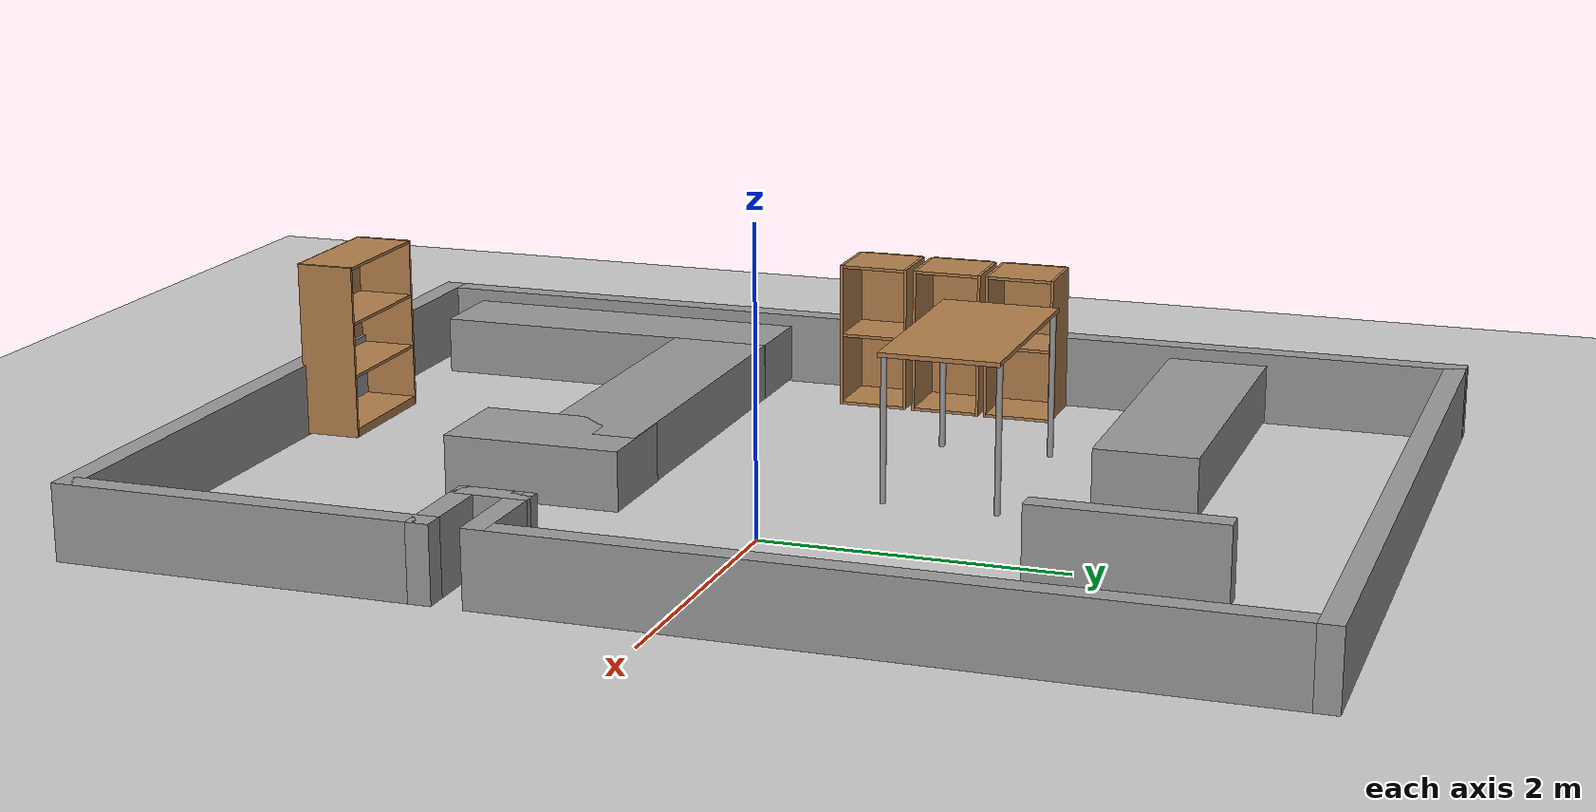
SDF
<sdf version="1.7">
 <world name="downstairs_combined">
  <include><uri>model://ground_plane</uri></include>
  <include>
   <uri>file:///home/trace/robot/src/robot_model_pkg/worlds/downstairs_building</uri>
   <pose>-1 0 0 0 0 0</pose>
  </include>
  <include>
   <uri>file:///home/trace/robot/src/robot_model_pkg/worlds/downstairs_furniture</uri>
   <pose>-2 -.5 .1 0 0 0</pose>
  </include>
  <gravity>0 0 -9.8</gravity>
  <scene><ambient>0.8 0.8 0.8 1</ambient><background>1 1 1 1</background><shadows>0</shadows></scene>
  <light name="sun" type="directional">
   <cast_shadows>0</cast_shadows>
   <pose>0 0 10 0 -0 0</pose>
   <diffuse>1 1 1 1</diffuse>
   <specular>0.5 0.5 0.5 1</specular>
   <attenuation>
    <range>1000</range>
    <constant>0.9</constant>
    <linear>0.01</linear>
    <quadratic>0.001</quadratic>
   </attenuation>
   <direction>-0.5 0.1 -0.9</direction>
  </light>
 </world>
</sdf>

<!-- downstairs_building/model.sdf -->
<sdf version='1.7'>
  <model name='downstairs_building'>
    <pose>-0.638414 -0.270406 0 0 -0 0</pose>
    <link name='Wall_10'>
      <collision name='Wall_10_Collision'>
        <geometry>
          <box>
            <size>0.5 0.15 0.5</size>
          </box>
        </geometry>
        <pose>0 0 0.25 0 -0 0</pose>
      </collision>
      <visual name='Wall_10_Visual'>
        <pose>0 0 0.25 0 -0 0</pose>
        <geometry>
          <box>
            <size>0.5 0.15 0.5</size>
          </box>
        </geometry>
        <material>
          <script>
            <uri>file://media/materials/scripts/gazebo.material</uri>
            <name>Gazebo/Grey</name>
          </script>
          <ambient>1 1 1 1</ambient>
        </material>
        <meta>
          <layer>0</layer>
        </meta>
      </visual>
      <pose>2.075 -1.275 0 0 -0 1.5708</pose>
    </link>
    <link name='Wall_11'>
      <collision name='Wall_11_Collision'>
        <geometry>
          <box>
            <size>0.75 0.15 0.5</size>
          </box>
        </geometry>
        <pose>0 0 0.25 0 -0 0</pose>
      </collision>
      <visual name='Wall_11_Visual'>
        <pose>0 0 0.25 0 -0 0</pose>
        <geometry>
          <box>
            <size>0.75 0.15 0.5</size>
          </box>
        </geometry>
        <material>
          <script>
            <uri>file://media/materials/scripts/gazebo.material</uri>
            <name>Gazebo/Grey</name>
          </script>
          <ambient>1 1 1 1</ambient>
        </material>
        <meta>
          <layer>0</layer>
        </meta>
      </visual>
      <pose>2.375 -1.1 0 0 -0 0</pose>
    </link>
    <link name='Wall_12'>
      <collision name='Wall_12_Collision'>
        <geometry>
          <box>
            <size>5 0.15 0.5</size>
          </box>
        </geometry>
        <pose>0 0 0.25 0 -0 0</pose>
      </collision>
      <visual name='Wall_12_Visual'>
        <pose>0 0 0.25 0 -0 0</pose>
        <geometry>
          <box>
            <size>5 0.15 0.5</size>
          </box>
        </geometry>
        <material>
          <script>
            <uri>file://media/materials/scripts/gazebo.material</uri>
            <name>Gazebo/Grey</name>
          </script>
          <ambient>1 1 1 1</ambient>
        </material>
        <meta>
          <layer>0</layer>
        </meta>
      </visual>
      <pose>2.675 1.325 0 0 -0 1.5708</pose>
    </link>
    <link name='Wall_16'>
      <collision name='Wall_16_Collision'>
        <geometry>
          <box>
            <size>5.5 0.15 0.5</size>
          </box>
        </geometry>
        <pose>0 0 0.25 0 -0 0</pose>
      </collision>
      <visual name='Wall_16_Visual'>
        <pose>0 0 0.25 0 -0 0</pose>
        <geometry>
          <box>
            <size>5.5 0.15 0.5</size>
          </box>
        </geometry>
        <material>
          <script>
            <uri>file://media/materials/scripts/gazebo.material</uri>
            <name>Gazebo/Grey</name>
          </script>
          <ambient>1 1 1 1</ambient>
        </material>
        <meta>
          <layer>0</layer>
        </meta>
      </visual>
      <pose>0 -3.8 0 0 -0 3.14159</pose>
    </link>
    <link name='Wall_17'>
      <collision name='Wall_17_Collision'>
        <geometry>
          <box>
            <size>7.75 0.15 0.5</size>
          </box>
        </geometry>
        <pose>0 0 0.25 0 -0 0</pose>
      </collision>
      <visual name='Wall_17_Visual'>
        <pose>0 0 0.25 0 -0 0</pose>
        <geometry>
          <box>
            <size>7.75 0.15 0.5</size>
          </box>
        </geometry>
        <material>
          <script>
            <uri>file://media/materials/scripts/gazebo.material</uri>
            <name>Gazebo/Grey</name>
          </script>
          <ambient>1 1 1 1</ambient>
        </material>
        <meta>
          <layer>0</layer>
        </meta>
      </visual>
      <pose>-2.675 -0 0 0 -0 1.5708</pose>
    </link>
    <link name='Wall_18'>
      <collision name='Wall_18_Collision'>
        <geometry>
          <box>
            <size>5.50023 0.15 0.5</size>
          </box>
        </geometry>
        <pose>0 0 0.25 0 -0 0</pose>
      </collision>
      <visual name='Wall_18_Visual'>
        <pose>0 0 0.25 0 -0 0</pose>
        <geometry>
          <box>
            <size>5.50023 0.15 0.5</size>
          </box>
        </geometry>
        <material>
          <script>
            <uri>file://media/materials/scripts/gazebo.material</uri>
            <name>Gazebo/Grey</name>
          </script>
          <ambient>1 1 1 1</ambient>
        </material>
        <meta>
          <layer>0</layer>
        </meta>
      </visual>
      <pose>0 3.8 0 0 -0 0</pose>
    </link>
    <link name='Wall_20'>
      <collision name='Wall_20_Collision'>
        <geometry>
          <box>
            <size>1.25 0.15 0.5</size>
          </box>
        </geometry>
        <pose>0 0 0.25 0 -0 0</pose>
      </collision>
      <visual name='Wall_20_Visual'>
        <pose>0 0 0.25 0 -0 0</pose>
        <geometry>
          <box>
            <size>1.25 0.15 0.5</size>
          </box>
        </geometry>
        <material>
          <script>
            <uri>file://media/materials/scripts/gazebo.material</uri>
            <name>Gazebo/Grey</name>
          </script>
          <ambient>1 1 1 1</ambient>
        </material>
        <meta>
          <layer>0</layer>
        </meta>
      </visual>
      <pose>1.20049 2.38048 0 0 -0 -1.5708</pose>
    </link>
    <link name='Wall_4'>
      <collision name='Wall_4_Collision'>
        <geometry>
          <box>
            <size>2.5 0.15 0.5</size>
          </box>
        </geometry>
        <pose>0 0 0.25 0 -0 0</pose>
      </collision>
      <visual name='Wall_4_Visual'>
        <pose>0 0 0.25 0 -0 0</pose>
        <geometry>
          <box>
            <size>2.5 0.15 0.5</size>
          </box>
        </geometry>
        <material>
          <script>
            <uri>file://media/materials/scripts/gazebo.material</uri>
            <name>Gazebo/Grey</name>
          </script>
          <ambient>1 1 1 1</ambient>
        </material>
        <meta>
          <layer>0</layer>
        </meta>
      </visual>
      <pose>2.675 -2.625 0 0 -0 1.5708</pose>
    </link>
    <link name='Wall_9'>
      <collision name='Wall_9_Collision'>
        <geometry>
          <box>
            <size>0.75 0.15 0.5</size>
          </box>
        </geometry>
        <pose>0 0 0.25 0 -0 0</pose>
      </collision>
      <visual name='Wall_9_Visual'>
        <pose>0 0 0.25 0 -0 0</pose>
        <geometry>
          <box>
            <size>0.75 0.15 0.5</size>
          </box>
        </geometry>
        <material>
          <script>
            <uri>file://media/materials/scripts/gazebo.material</uri>
            <name>Gazebo/Grey</name>
          </script>
          <ambient>1 1 1 1</ambient>
        </material>
        <meta>
          <layer>0</layer>
        </meta>
      </visual>
      <pose>2.375 -1.45 0 0 -0 3.14159</pose>
    </link>
    <static>1</static>
  </model>
</sdf>

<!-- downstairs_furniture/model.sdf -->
<sdf version='1.7'>
  <model name='downstairs_furniture'>
    <static>1</static>
    <link name='link_0'>
      <inertial>
        <mass>0.0130697</mass>
        <inertia>
          <ixx>0.000204633</ixx>
          <ixy>0</ixy>
          <ixz>0</ixz>
          <iyy>0.000147146</iyy>
          <iyz>0</iyz>
          <izz>0.000335628</izz>
        </inertia>
        <pose>0 0 0 0 -0 0</pose>
      </inertial>
      <pose>3.2564 0.476482 -0.035 0 -0 0</pose>
      <gravity>1</gravity>
      <self_collide>0</self_collide>
      <kinematic>0</kinematic>
      <enable_wind>0</enable_wind>
      <visual name='visual'>
        <pose>0 0 0 0 -0 0</pose>
        <geometry>
          <box>
            <size>0.357335 0.424817 0.1</size>
          </box>
        </geometry>
        <material>
          <lighting>1</lighting>
          <script>
            <uri>file://media/materials/scripts/gazebo.material</uri>
            <name>Gazebo/Grey</name>
          </script>
          <shader type='pixel'>
            <normal_map>__default__</normal_map>
          </shader>
          <ambient>0.3 0.3 0.3 1</ambient>
          <diffuse>0.7 0.7 0.7 1</diffuse>
          <specular>0.01 0.01 0.01 1</specular>
          <emissive>0 0 0 1</emissive>
        </material>
        <transparency>0</transparency>
        <cast_shadows>1</cast_shadows>
      </visual>
      <collision name='collision'>
        <laser_retro>0</laser_retro>
        <max_contacts>10</max_contacts>
        <pose>0 0 0 0 -0 0</pose>
        <geometry>
          <box>
            <size>0.357335 0.424818 0.086108</size>
          </box>
        </geometry>
        <surface>
          <friction>
            <ode>
              <mu>1</mu>
              <mu2>1</mu2>
              <fdir1>0 0 0</fdir1>
              <slip1>0</slip1>
              <slip2>0</slip2>
            </ode>
            <torsional>
              <coefficient>1</coefficient>
              <patch_radius>0</patch_radius>
              <surface_radius>0</surface_radius>
              <use_patch_radius>1</use_patch_radius>
              <ode>
                <slip>0</slip>
              </ode>
            </torsional>
          </friction>
          <bounce>
            <restitution_coefficient>0</restitution_coefficient>
            <threshold>1e+06</threshold>
          </bounce>
          <contact>
            <collide_without_contact>0</collide_without_contact>
            <collide_without_contact_bitmask>1</collide_without_contact_bitmask>
            <collide_bitmask>1</collide_bitmask>
            <ode>
              <soft_cfm>0</soft_cfm>
              <soft_erp>0.2</soft_erp>
              <kp>1e+13</kp>
              <kd>1</kd>
              <max_vel>0.01</max_vel>
              <min_depth>0</min_depth>
            </ode>
            <bullet>
              <split_impulse>1</split_impulse>
              <split_impulse_penetration_threshold>-0.01</split_impulse_penetration_threshold>
              <soft_cfm>0</soft_cfm>
              <soft_erp>0.2</soft_erp>
              <kp>1e+13</kp>
              <kd>1</kd>
            </bullet>
          </contact>
        </surface>
      </collision>
    </link>
    <link name='link_2'>
      <inertial>
        <mass>0.737065</mass>
        <inertia>
          <ixx>0.0405302</ixx>
          <ixy>0</ixy>
          <ixz>0</ixz>
          <iyy>0.392236</iyy>
          <iyz>0</iyz>
          <izz>0.410149</izz>
        </inertia>
        <pose>0 0 0 0 -0 0</pose>
      </inertial>
      <pose>-1.34615 -1.76372 0.115 0 -0 1.57646</pose>
      <gravity>1</gravity>
      <self_collide>0</self_collide>
      <kinematic>0</kinematic>
      <enable_wind>0</enable_wind>
      <visual name='visual'>
        <pose>0 0 0 0 -0 0</pose>
        <geometry>
          <box>
            <size>2.49034 0.689749 0.4</size>
          </box>
        </geometry>
        <material>
          <lighting>1</lighting>
          <script>
            <uri>file://media/materials/scripts/gazebo.material</uri>
            <name>Gazebo/Grey</name>
          </script>
          <shader type='pixel'>
            <normal_map>__default__</normal_map>
          </shader>
          <ambient>0.3 0.3 0.3 1</ambient>
          <diffuse>0.7 0.7 0.7 1</diffuse>
          <specular>0.01 0.01 0.01 1</specular>
          <emissive>0 0 0 1</emissive>
        </material>
        <transparency>0</transparency>
        <cast_shadows>1</cast_shadows>
      </visual>
      <collision name='collision'>
        <laser_retro>0</laser_retro>
        <max_contacts>10</max_contacts>
        <pose>0 0 0 0 -0 0</pose>
        <geometry>
          <box>
            <size>2.49034 0.689749 0.429081</size>
          </box>
        </geometry>
        <surface>
          <friction>
            <ode>
              <mu>1</mu>
              <mu2>1</mu2>
              <fdir1>0 0 0</fdir1>
              <slip1>0</slip1>
              <slip2>0</slip2>
            </ode>
            <torsional>
              <coefficient>1</coefficient>
              <patch_radius>0</patch_radius>
              <surface_radius>0</surface_radius>
              <use_patch_radius>1</use_patch_radius>
              <ode>
                <slip>0</slip>
              </ode>
            </torsional>
          </friction>
          <bounce>
            <restitution_coefficient>0</restitution_coefficient>
            <threshold>1e+06</threshold>
          </bounce>
          <contact>
            <collide_without_contact>0</collide_without_contact>
            <collide_without_contact_bitmask>1</collide_without_contact_bitmask>
            <collide_bitmask>1</collide_bitmask>
            <ode>
              <soft_cfm>0</soft_cfm>
              <soft_erp>0.2</soft_erp>
              <kp>1e+13</kp>
              <kd>1</kd>
              <max_vel>0.01</max_vel>
              <min_depth>0</min_depth>
            </ode>
            <bullet>
              <split_impulse>1</split_impulse>
              <split_impulse_penetration_threshold>-0.01</split_impulse_penetration_threshold>
              <soft_cfm>0</soft_cfm>
              <soft_erp>0.2</soft_erp>
              <kp>1e+13</kp>
              <kd>1</kd>
            </bullet>
          </contact>
        </surface>
      </collision>
    </link>
    <link name='link_2_clone'>
      <inertial>
        <mass>0.737065</mass>
        <inertia>
          <ixx>0.0405302</ixx>
          <ixy>0</ixy>
          <ixz>0</ixz>
          <iyy>0.392236</iyy>
          <iyz>0</iyz>
          <izz>0.410149</izz>
        </inertia>
        <pose>0 0 0 0 -0 0</pose>
      </inertial>
      <pose>0.232348 -0.863769 0.115 0 -0 0</pose>
      <gravity>1</gravity>
      <self_collide>0</self_collide>
      <kinematic>0</kinematic>
      <enable_wind>0</enable_wind>
      <visual name='visual'>
        <pose>0 0 0 0 -0 0</pose>
        <geometry>
          <box>
            <size>2.49034 0.689749 0.4</size>
          </box>
        </geometry>
        <material>
          <lighting>1</lighting>
          <script>
            <uri>file://media/materials/scripts/gazebo.material</uri>
            <name>Gazebo/Grey</name>
          </script>
          <shader type='pixel'>
            <normal_map>__default__</normal_map>
          </shader>
          <ambient>0.3 0.3 0.3 1</ambient>
          <diffuse>0.7 0.7 0.7 1</diffuse>
          <specular>0.01 0.01 0.01 1</specular>
          <emissive>0 0 0 1</emissive>
        </material>
        <transparency>0</transparency>
        <cast_shadows>1</cast_shadows>
      </visual>
      <collision name='collision'>
        <laser_retro>0</laser_retro>
        <max_contacts>10</max_contacts>
        <pose>0 0 0 0 -0 0</pose>
        <geometry>
          <box>
            <size>2.49034 0.689749 0.429081</size>
          </box>
        </geometry>
        <surface>
          <friction>
            <ode>
              <mu>1</mu>
              <mu2>1</mu2>
              <fdir1>0 0 0</fdir1>
              <slip1>0</slip1>
              <slip2>0</slip2>
            </ode>
            <torsional>
              <coefficient>1</coefficient>
              <patch_radius>0</patch_radius>
              <surface_radius>0</surface_radius>
              <use_patch_radius>1</use_patch_radius>
              <ode>
                <slip>0</slip>
              </ode>
            </torsional>
          </friction>
          <bounce>
            <restitution_coefficient>0</restitution_coefficient>
            <threshold>1e+06</threshold>
          </bounce>
          <contact>
            <collide_without_contact>0</collide_without_contact>
            <collide_without_contact_bitmask>1</collide_without_contact_bitmask>
            <collide_bitmask>1</collide_bitmask>
            <ode>
              <soft_cfm>0</soft_cfm>
              <soft_erp>0.2</soft_erp>
              <kp>1e+13</kp>
              <kd>1</kd>
              <max_vel>0.01</max_vel>
              <min_depth>0</min_depth>
            </ode>
            <bullet>
              <split_impulse>1</split_impulse>
              <split_impulse_penetration_threshold>-0.01</split_impulse_penetration_threshold>
              <soft_cfm>0</soft_cfm>
              <soft_erp>0.2</soft_erp>
              <kp>1e+13</kp>
              <kd>1</kd>
            </bullet>
          </contact>
        </surface>
      </collision>
    </link>
    <link name='link_2_clone_0'>
      <inertial>
        <mass>0.356026</mass>
        <inertia>
          <ixx>0.0195774</ixx>
          <ixy>0</ixy>
          <ixz>0</ixz>
          <iyy>0.0483934</iyy>
          <iyz>0</iyz>
          <izz>0.0570461</izz>
        </inertia>
        <pose>0 0 0 0 -0 0</pose>
      </inertial>
      <pose>1.45749 -1.11252 0.115 0 -0 1.57646</pose>
      <gravity>1</gravity>
      <self_collide>0</self_collide>
      <kinematic>0</kinematic>
      <enable_wind>0</enable_wind>
      <visual name='visual'>
        <pose>0 0 0 0 -0 0</pose>
        <geometry>
          <box>
            <size>1.20292 0.689749 0.4</size>
          </box>
        </geometry>
        <material>
          <lighting>1</lighting>
          <script>
            <uri>file://media/materials/scripts/gazebo.material</uri>
            <name>Gazebo/Grey</name>
          </script>
          <shader type='pixel'>
            <normal_map>__default__</normal_map>
          </shader>
          <ambient>0.3 0.3 0.3 1</ambient>
          <diffuse>0.7 0.7 0.7 1</diffuse>
          <specular>0.01 0.01 0.01 1</specular>
          <emissive>0 0 0 1</emissive>
        </material>
        <transparency>0</transparency>
        <cast_shadows>1</cast_shadows>
      </visual>
      <collision name='collision'>
        <laser_retro>0</laser_retro>
        <max_contacts>10</max_contacts>
        <pose>0 0 0 0 -0 0</pose>
        <geometry>
          <box>
            <size>1.20292 0.689749 0.429081</size>
          </box>
        </geometry>
        <surface>
          <friction>
            <ode>
              <mu>1</mu>
              <mu2>1</mu2>
              <fdir1>0 0 0</fdir1>
              <slip1>0</slip1>
              <slip2>0</slip2>
            </ode>
            <torsional>
              <coefficient>1</coefficient>
              <patch_radius>0</patch_radius>
              <surface_radius>0</surface_radius>
              <use_patch_radius>1</use_patch_radius>
              <ode>
                <slip>0</slip>
              </ode>
            </torsional>
          </friction>
          <bounce>
            <restitution_coefficient>0</restitution_coefficient>
            <threshold>1e+06</threshold>
          </bounce>
          <contact>
            <collide_without_contact>0</collide_without_contact>
            <collide_without_contact_bitmask>1</collide_without_contact_bitmask>
            <collide_bitmask>1</collide_bitmask>
            <ode>
              <soft_cfm>0</soft_cfm>
              <soft_erp>0.2</soft_erp>
              <kp>1e+13</kp>
              <kd>1</kd>
              <max_vel>0.01</max_vel>
              <min_depth>0</min_depth>
            </ode>
            <bullet>
              <split_impulse>1</split_impulse>
              <split_impulse_penetration_threshold>-0.01</split_impulse_penetration_threshold>
              <soft_cfm>0</soft_cfm>
              <soft_erp>0.2</soft_erp>
              <kp>1e+13</kp>
              <kd>1</kd>
            </bullet>
          </contact>
        </surface>
      </collision>
    </link>
    <link name='link_2_clone_clone'>
      <inertial>
        <mass>0.737065</mass>
        <inertia>
          <ixx>0.0405302</ixx>
          <ixy>0</ixy>
          <ixz>0</ixz>
          <iyy>0.392236</iyy>
          <iyz>0</iyz>
          <izz>0.410149</izz>
        </inertia>
        <pose>0 0 0 0 -0 0</pose>
      </inertial>
      <pose>-0.486153 2.66208 0.115 0 -0 0</pose>
      <gravity>1</gravity>
      <self_collide>0</self_collide>
      <kinematic>0</kinematic>
      <enable_wind>0</enable_wind>
      <visual name='visual'>
        <pose>0 0 0 0 -0 0</pose>
        <geometry>
          <box>
            <size>2.49034 0.689749 0.4</size>
          </box>
        </geometry>
        <material>
          <lighting>1</lighting>
          <script>
            <uri>file://media/materials/scripts/gazebo.material</uri>
            <name>Gazebo/Grey</name>
          </script>
          <shader type='pixel'>
            <normal_map>__default__</normal_map>
          </shader>
          <ambient>0.3 0.3 0.3 1</ambient>
          <diffuse>0.7 0.7 0.7 1</diffuse>
          <specular>0.01 0.01 0.01 1</specular>
          <emissive>0 0 0 1</emissive>
        </material>
        <transparency>0</transparency>
        <cast_shadows>1</cast_shadows>
      </visual>
      <collision name='collision'>
        <laser_retro>0</laser_retro>
        <max_contacts>10</max_contacts>
        <pose>0 0 0 0 -0 0</pose>
        <geometry>
          <box>
            <size>2.49034 0.689749 0.429081</size>
          </box>
        </geometry>
        <surface>
          <friction>
            <ode>
              <mu>1</mu>
              <mu2>1</mu2>
              <fdir1>0 0 0</fdir1>
              <slip1>0</slip1>
              <slip2>0</slip2>
            </ode>
            <torsional>
              <coefficient>1</coefficient>
              <patch_radius>0</patch_radius>
              <surface_radius>0</surface_radius>
              <use_patch_radius>1</use_patch_radius>
              <ode>
                <slip>0</slip>
              </ode>
            </torsional>
          </friction>
          <bounce>
            <restitution_coefficient>0</restitution_coefficient>
            <threshold>1e+06</threshold>
          </bounce>
          <contact>
            <collide_without_contact>0</collide_without_contact>
            <collide_without_contact_bitmask>1</collide_without_contact_bitmask>
            <collide_bitmask>1</collide_bitmask>
            <ode>
              <soft_cfm>0</soft_cfm>
              <soft_erp>0.2</soft_erp>
              <kp>1e+13</kp>
              <kd>1</kd>
              <max_vel>0.01</max_vel>
              <min_depth>0</min_depth>
            </ode>
            <bullet>
              <split_impulse>1</split_impulse>
              <split_impulse_penetration_threshold>-0.01</split_impulse_penetration_threshold>
              <soft_cfm>0</soft_cfm>
              <soft_erp>0.2</soft_erp>
              <kp>1e+13</kp>
              <kd>1</kd>
            </bullet>
          </contact>
        </surface>
      </collision>
    </link>
    <model name='bookshelf'>
      <static>1</static>
      <link name='link'>
        <inertial>
          <mass>1</mass>
        </inertial>
        <collision name='back'>
          <pose>0 0.005 0.6 0 -0 0</pose>
          <geometry>
            <box>
              <size>0.9 0.01 1.2</size>
            </box>
          </geometry>
        </collision>
        <visual name='visual1'>
          <pose>0 0.005 0.6 0 -0 0</pose>
          <geometry>
            <box>
              <size>0.9 0.01 1.2</size>
            </box>
          </geometry>
          <material>
            <script>
              <uri>file://media/materials/scripts/gazebo.material</uri>
              <name>Gazebo/Wood</name>
            </script>
          </material>
        </visual>
        <collision name='left_side'>
          <pose>0.45 -0.195 0.6 0 -0 0</pose>
          <geometry>
            <box>
              <size>0.02 0.4 1.2</size>
            </box>
          </geometry>
        </collision>
        <visual name='visual2'>
          <pose>0.45 -0.195 0.6 0 -0 0</pose>
          <geometry>
            <box>
              <size>0.02 0.4 1.2</size>
            </box>
          </geometry>
          <material>
            <script>
              <uri>file://media/materials/scripts/gazebo.material</uri>
              <name>Gazebo/Wood</name>
            </script>
          </material>
        </visual>
        <collision name='right_side'>
          <pose>-0.45 -0.195 0.6 0 -0 0</pose>
          <geometry>
            <box>
              <size>0.02 0.4 1.2</size>
            </box>
          </geometry>
        </collision>
        <visual name='visual3'>
          <pose>-0.45 -0.195 0.6 0 -0 0</pose>
          <geometry>
            <box>
              <size>0.02 0.4 1.2</size>
            </box>
          </geometry>
          <material>
            <script>
              <uri>file://media/materials/scripts/gazebo.material</uri>
              <name>Gazebo/Wood</name>
            </script>
          </material>
        </visual>
        <collision name='bottom'>
          <pose>0 -0.195 0.03 0 -0 0</pose>
          <geometry>
            <box>
              <size>0.88 0.4 0.06</size>
            </box>
          </geometry>
        </collision>
        <visual name='visual4'>
          <pose>0 -0.195 0.03 0 -0 0</pose>
          <geometry>
            <box>
              <size>0.88 0.4 0.06</size>
            </box>
          </geometry>
          <material>
            <script>
              <uri>file://media/materials/scripts/gazebo.material</uri>
              <name>Gazebo/Wood</name>
            </script>
          </material>
        </visual>
        <collision name='top'>
          <pose>0 -0.195 1.19 0 -0 0</pose>
          <geometry>
            <box>
              <size>0.88 0.4 0.02</size>
            </box>
          </geometry>
        </collision>
        <visual name='visual5'>
          <pose>0 -0.195 1.19 0 -0 0</pose>
          <geometry>
            <box>
              <size>0.88 0.4 0.02</size>
            </box>
          </geometry>
          <material>
            <script>
              <uri>file://media/materials/scripts/gazebo.material</uri>
              <name>Gazebo/Wood</name>
            </script>
          </material>
        </visual>
        <collision name='low_shelf'>
          <pose>0 -0.195 0.43 0 -0 0</pose>
          <geometry>
            <box>
              <size>0.88 0.4 0.02</size>
            </box>
          </geometry>
        </collision>
        <visual name='visual6'>
          <pose>0 -0.195 0.43 0 -0 0</pose>
          <geometry>
            <box>
              <size>0.88 0.4 0.02</size>
            </box>
          </geometry>
          <material>
            <script>
              <uri>file://media/materials/scripts/gazebo.material</uri>
              <name>Gazebo/Wood</name>
            </script>
          </material>
        </visual>
        <collision name='high_shelf'>
          <pose>0 -0.195 0.8 0 -0 0</pose>
          <geometry>
            <box>
              <size>0.88 0.4 0.02</size>
            </box>
          </geometry>
        </collision>
        <visual name='visual7'>
          <pose>0 -0.195 0.8 0 -0 0</pose>
          <geometry>
            <box>
              <size>0.88 0.4 0.02</size>
            </box>
          </geometry>
          <material>
            <script>
              <uri>file://media/materials/scripts/gazebo.material</uri>
              <name>Gazebo/Wood</name>
            </script>
          </material>
        </visual>
      </link>
      <pose>0.373081 -3.24677 -0.085 0 0 -3.13438</pose>
    </model>
    <model name='cabinet'>
      <static>1</static>
      <link name='cabinet_bottom_plate'>
        <inertial>
          <pose>0 0 -1 0 -0 0</pose>
          <inertia>
            <ixx>2.05</ixx>
            <ixy>0</ixy>
            <ixz>0</ixz>
            <iyy>2.05</iyy>
            <iyz>0</iyz>
            <izz>2.05</izz>
          </inertia>
          <mass>25</mass>
        </inertial>
        <collision name='cabinet_bottom_plate_geom'>
          <pose>0 0 0.01 0 -0 0</pose>
          <geometry>
            <box>
              <size>0.45 0.45 0.02</size>
            </box>
          </geometry>
        </collision>
        <visual name='cabinet_bottom_plate_geom_visual'>
          <pose>0 0 0.01 0 -0 0</pose>
          <geometry>
            <box>
              <size>0.45 0.45 0.02</size>
            </box>
          </geometry>
          <material>
            <script>
              <uri>file://media/materials/scripts/gazebo.material</uri>
              <name>Gazebo/Wood</name>
            </script>
          </material>
        </visual>
        <collision name='cabinet_bottom_plate_geom_cabinet_back_plate'>
          <pose>0.235 0 0.51 0 -0 0</pose>
          <geometry>
            <box>
              <size>0.02 0.45 1.02</size>
            </box>
          </geometry>
        </collision>
        <visual name='cabinet_bottom_plate_geom_cabinet_back_plate_visual'>
          <pose>0.235 0 0.51 0 -0 0</pose>
          <geometry>
            <box>
              <size>0.02 0.45 1.02</size>
            </box>
          </geometry>
          <material>
            <script>
              <uri>file://media/materials/scripts/gazebo.material</uri>
              <name>Gazebo/Wood</name>
            </script>
          </material>
        </visual>
        <collision name='cabinet_bottom_plate_geom_cabinet_left_plate'>
          <pose>0 0.235 0.51 0 -0 0</pose>
          <geometry>
            <box>
              <size>0.45 0.02 1.02</size>
            </box>
          </geometry>
        </collision>
        <visual name='cabinet_bottom_plate_geom_cabinet_left_plate_visual'>
          <pose>0 0.235 0.51 0 -0 0</pose>
          <geometry>
            <box>
              <size>0.45 0.02 1.02</size>
            </box>
          </geometry>
          <material>
            <script>
              <uri>file://media/materials/scripts/gazebo.material</uri>
              <name>Gazebo/Wood</name>
            </script>
          </material>
        </visual>
        <collision name='cabinet_bottom_plate_geom_cabinet_middle_plate'>
          <pose>0 0 0.51 0 -0 0</pose>
          <geometry>
            <box>
              <size>0.45 0.45 0.02</size>
            </box>
          </geometry>
        </collision>
        <visual name='cabinet_bottom_plate_geom_cabinet_middle_plate_visual'>
          <pose>0 0 0.51 0 -0 0</pose>
          <geometry>
            <box>
              <size>0.45 0.45 0.02</size>
            </box>
          </geometry>
          <material>
            <script>
              <uri>file://media/materials/scripts/gazebo.material</uri>
              <name>Gazebo/Wood</name>
            </script>
          </material>
        </visual>
        <collision name='cabinet_bottom_plate_geom_cabinet_right_plate'>
          <pose>0 -0.235 0.51 0 -0 0</pose>
          <geometry>
            <box>
              <size>0.45 0.02 1.02</size>
            </box>
          </geometry>
        </collision>
        <visual name='cabinet_bottom_plate_geom_cabinet_right_plate_visual'>
          <pose>0 -0.235 0.51 0 -0 0</pose>
          <geometry>
            <box>
              <size>0.45 0.02 1.02</size>
            </box>
          </geometry>
          <material>
            <script>
              <uri>file://media/materials/scripts/gazebo.material</uri>
              <name>Gazebo/Wood</name>
            </script>
          </material>
        </visual>
        <collision name='cabinet_bottom_plate_geom_cabinet_top_plate'>
          <pose>0 0 1.01 0 -0 0</pose>
          <geometry>
            <box>
              <size>0.45 0.45 0.02</size>
            </box>
          </geometry>
        </collision>
        <visual name='cabinet_bottom_plate_geom_cabinet_top_plate_visual'>
          <pose>0 0 1.01 0 -0 0</pose>
          <geometry>
            <box>
              <size>0.45 0.45 0.02</size>
            </box>
          </geometry>
          <material>
            <script>
              <uri>file://media/materials/scripts/gazebo.material</uri>
              <name>Gazebo/Wood</name>
            </script>
          </material>
        </visual>
      </link>
      <pose>-1.29183 0.279397 -0.085 0 0 -3.13986</pose>
    </model>
    <model name='cabinet_clone'>
      <static>1</static>
      <link name='cabinet_bottom_plate'>
        <inertial>
          <pose>0 0 -1 0 -0 0</pose>
          <inertia>
            <ixx>2.05</ixx>
            <ixy>0</ixy>
            <ixz>0</ixz>
            <iyy>2.05</iyy>
            <iyz>0</iyz>
            <izz>2.05</izz>
          </inertia>
          <mass>25</mass>
        </inertial>
        <collision name='cabinet_bottom_plate_geom'>
          <pose>0 0 0.01 0 -0 0</pose>
          <geometry>
            <box>
              <size>0.45 0.45 0.02</size>
            </box>
          </geometry>
        </collision>
        <visual name='cabinet_bottom_plate_geom_visual'>
          <pose>0 0 0.01 0 -0 0</pose>
          <geometry>
            <box>
              <size>0.45 0.45 0.02</size>
            </box>
          </geometry>
          <material>
            <script>
              <uri>file://media/materials/scripts/gazebo.material</uri>
              <name>Gazebo/Wood</name>
            </script>
          </material>
        </visual>
        <collision name='cabinet_bottom_plate_geom_cabinet_back_plate'>
          <pose>0.235 0 0.51 0 -0 0</pose>
          <geometry>
            <box>
              <size>0.02 0.45 1.02</size>
            </box>
          </geometry>
        </collision>
        <visual name='cabinet_bottom_plate_geom_cabinet_back_plate_visual'>
          <pose>0.235 0 0.51 0 -0 0</pose>
          <geometry>
            <box>
              <size>0.02 0.45 1.02</size>
            </box>
          </geometry>
          <material>
            <script>
              <uri>file://media/materials/scripts/gazebo.material</uri>
              <name>Gazebo/Wood</name>
            </script>
          </material>
        </visual>
        <collision name='cabinet_bottom_plate_geom_cabinet_left_plate'>
          <pose>0 0.235 0.51 0 -0 0</pose>
          <geometry>
            <box>
              <size>0.45 0.02 1.02</size>
            </box>
          </geometry>
        </collision>
        <visual name='cabinet_bottom_plate_geom_cabinet_left_plate_visual'>
          <pose>0 0.235 0.51 0 -0 0</pose>
          <geometry>
            <box>
              <size>0.45 0.02 1.02</size>
            </box>
          </geometry>
          <material>
            <script>
              <uri>file://media/materials/scripts/gazebo.material</uri>
              <name>Gazebo/Wood</name>
            </script>
          </material>
        </visual>
        <collision name='cabinet_bottom_plate_geom_cabinet_middle_plate'>
          <pose>0 0 0.51 0 -0 0</pose>
          <geometry>
            <box>
              <size>0.45 0.45 0.02</size>
            </box>
          </geometry>
        </collision>
        <visual name='cabinet_bottom_plate_geom_cabinet_middle_plate_visual'>
          <pose>0 0 0.51 0 -0 0</pose>
          <geometry>
            <box>
              <size>0.45 0.45 0.02</size>
            </box>
          </geometry>
          <material>
            <script>
              <uri>file://media/materials/scripts/gazebo.material</uri>
              <name>Gazebo/Wood</name>
            </script>
          </material>
        </visual>
        <collision name='cabinet_bottom_plate_geom_cabinet_right_plate'>
          <pose>0 -0.235 0.51 0 -0 0</pose>
          <geometry>
            <box>
              <size>0.45 0.02 1.02</size>
            </box>
          </geometry>
        </collision>
        <visual name='cabinet_bottom_plate_geom_cabinet_right_plate_visual'>
          <pose>0 -0.235 0.51 0 -0 0</pose>
          <geometry>
            <box>
              <size>0.45 0.02 1.02</size>
            </box>
          </geometry>
          <material>
            <script>
              <uri>file://media/materials/scripts/gazebo.material</uri>
              <name>Gazebo/Wood</name>
            </script>
          </material>
        </visual>
        <collision name='cabinet_bottom_plate_geom_cabinet_top_plate'>
          <pose>0 0 1.01 0 -0 0</pose>
          <geometry>
            <box>
              <size>0.45 0.45 0.02</size>
            </box>
          </geometry>
        </collision>
        <visual name='cabinet_bottom_plate_geom_cabinet_top_plate_visual'>
          <pose>0 0 1.01 0 -0 0</pose>
          <geometry>
            <box>
              <size>0.45 0.45 0.02</size>
            </box>
          </geometry>
          <material>
            <script>
              <uri>file://media/materials/scripts/gazebo.material</uri>
              <name>Gazebo/Wood</name>
            </script>
          </material>
        </visual>
      </link>
      <pose>-1.29376 0.817565 -0.085 0 0 -3.13986</pose>
    </model>
    <model name='cabinet_clone_0'>
      <static>1</static>
      <link name='cabinet_bottom_plate'>
        <inertial>
          <pose>0 0 -1 0 -0 0</pose>
          <inertia>
            <ixx>2.05</ixx>
            <ixy>0</ixy>
            <ixz>0</ixz>
            <iyy>2.05</iyy>
            <iyz>0</iyz>
            <izz>2.05</izz>
          </inertia>
          <mass>25</mass>
        </inertial>
        <collision name='cabinet_bottom_plate_geom'>
          <pose>0 0 0.01 0 -0 0</pose>
          <geometry>
            <box>
              <size>0.45 0.45 0.02</size>
            </box>
          </geometry>
        </collision>
        <visual name='cabinet_bottom_plate_geom_visual'>
          <pose>0 0 0.01 0 -0 0</pose>
          <geometry>
            <box>
              <size>0.45 0.45 0.02</size>
            </box>
          </geometry>
          <material>
            <script>
              <uri>file://media/materials/scripts/gazebo.material</uri>
              <name>Gazebo/Wood</name>
            </script>
          </material>
        </visual>
        <collision name='cabinet_bottom_plate_geom_cabinet_back_plate'>
          <pose>0.235 0 0.51 0 -0 0</pose>
          <geometry>
            <box>
              <size>0.02 0.45 1.02</size>
            </box>
          </geometry>
        </collision>
        <visual name='cabinet_bottom_plate_geom_cabinet_back_plate_visual'>
          <pose>0.235 0 0.51 0 -0 0</pose>
          <geometry>
            <box>
              <size>0.02 0.45 1.02</size>
            </box>
          </geometry>
          <material>
            <script>
              <uri>file://media/materials/scripts/gazebo.material</uri>
              <name>Gazebo/Wood</name>
            </script>
          </material>
        </visual>
        <collision name='cabinet_bottom_plate_geom_cabinet_left_plate'>
          <pose>0 0.235 0.51 0 -0 0</pose>
          <geometry>
            <box>
              <size>0.45 0.02 1.02</size>
            </box>
          </geometry>
        </collision>
        <visual name='cabinet_bottom_plate_geom_cabinet_left_plate_visual'>
          <pose>0 0.235 0.51 0 -0 0</pose>
          <geometry>
            <box>
              <size>0.45 0.02 1.02</size>
            </box>
          </geometry>
          <material>
            <script>
              <uri>file://media/materials/scripts/gazebo.material</uri>
              <name>Gazebo/Wood</name>
            </script>
          </material>
        </visual>
        <collision name='cabinet_bottom_plate_geom_cabinet_middle_plate'>
          <pose>0 0 0.51 0 -0 0</pose>
          <geometry>
            <box>
              <size>0.45 0.45 0.02</size>
            </box>
          </geometry>
        </collision>
        <visual name='cabinet_bottom_plate_geom_cabinet_middle_plate_visual'>
          <pose>0 0 0.51 0 -0 0</pose>
          <geometry>
            <box>
              <size>0.45 0.45 0.02</size>
            </box>
          </geometry>
          <material>
            <script>
              <uri>file://media/materials/scripts/gazebo.material</uri>
              <name>Gazebo/Wood</name>
            </script>
          </material>
        </visual>
        <collision name='cabinet_bottom_plate_geom_cabinet_right_plate'>
          <pose>0 -0.235 0.51 0 -0 0</pose>
          <geometry>
            <box>
              <size>0.45 0.02 1.02</size>
            </box>
          </geometry>
        </collision>
        <visual name='cabinet_bottom_plate_geom_cabinet_right_plate_visual'>
          <pose>0 -0.235 0.51 0 -0 0</pose>
          <geometry>
            <box>
              <size>0.45 0.02 1.02</size>
            </box>
          </geometry>
          <material>
            <script>
              <uri>file://media/materials/scripts/gazebo.material</uri>
              <name>Gazebo/Wood</name>
            </script>
          </material>
        </visual>
        <collision name='cabinet_bottom_plate_geom_cabinet_top_plate'>
          <pose>0 0 1.01 0 -0 0</pose>
          <geometry>
            <box>
              <size>0.45 0.45 0.02</size>
            </box>
          </geometry>
        </collision>
        <visual name='cabinet_bottom_plate_geom_cabinet_top_plate_visual'>
          <pose>0 0 1.01 0 -0 0</pose>
          <geometry>
            <box>
              <size>0.45 0.45 0.02</size>
            </box>
          </geometry>
          <material>
            <script>
              <uri>file://media/materials/scripts/gazebo.material</uri>
              <name>Gazebo/Wood</name>
            </script>
          </material>
        </visual>
      </link>
      <pose>-1.29487 1.34458 -0.085 0 0 -3.13986</pose>
    </model>
    <model name='table'>
      <static>1</static>
      <link name='link'>
        <collision name='surface'>
          <pose>0 0 1 0 -0 0</pose>
          <geometry>
            <box>
              <size>1.5 0.8 0.03</size>
            </box>
          </geometry>
          <surface>
            <friction>
              <ode>
                <mu>0.6</mu>
                <mu2>0.6</mu2>
              </ode>
            </friction>
          </surface>
        </collision>
        <visual name='visual1'>
          <pose>0 0 1 0 -0 0</pose>
          <geometry>
            <box>
              <size>1.5 0.8 0.03</size>
            </box>
          </geometry>
          <material>
            <script>
              <uri>file://media/materials/scripts/gazebo.material</uri>
              <name>Gazebo/Wood</name>
            </script>
          </material>
        </visual>
        <collision name='front_left_leg'>
          <pose>0.68 0.38 0.5 0 -0 0</pose>
          <geometry>
            <cylinder>
              <radius>0.02</radius>
              <length>1</length>
            </cylinder>
          </geometry>
        </collision>
        <visual name='front_left_leg'>
          <pose>0.68 0.38 0.5 0 -0 0</pose>
          <geometry>
            <cylinder>
              <radius>0.02</radius>
              <length>1</length>
            </cylinder>
          </geometry>
          <material>
            <script>
              <uri>file://media/materials/scripts/gazebo.material</uri>
              <name>Gazebo/Grey</name>
            </script>
          </material>
        </visual>
        <collision name='front_right_leg'>
          <pose>0.68 -0.38 0.5 0 -0 0</pose>
          <geometry>
            <cylinder>
              <radius>0.02</radius>
              <length>1</length>
            </cylinder>
          </geometry>
        </collision>
        <visual name='front_right_leg'>
          <pose>0.68 -0.38 0.5 0 -0 0</pose>
          <geometry>
            <cylinder>
              <radius>0.02</radius>
              <length>1</length>
            </cylinder>
          </geometry>
          <material>
            <script>
              <uri>file://media/materials/scripts/gazebo.material</uri>
              <name>Gazebo/Grey</name>
            </script>
          </material>
        </visual>
        <collision name='back_right_leg'>
          <pose>-0.68 -0.38 0.5 0 -0 0</pose>
          <geometry>
            <cylinder>
              <radius>0.02</radius>
              <length>1</length>
            </cylinder>
          </geometry>
        </collision>
        <visual name='back_right_leg'>
          <pose>-0.68 -0.38 0.5 0 -0 0</pose>
          <geometry>
            <cylinder>
              <radius>0.02</radius>
              <length>1</length>
            </cylinder>
          </geometry>
          <material>
            <script>
              <uri>file://media/materials/scripts/gazebo.material</uri>
              <name>Gazebo/Grey</name>
            </script>
          </material>
        </visual>
        <collision name='back_left_leg'>
          <pose>-0.68 0.38 0.5 0 -0 0</pose>
          <geometry>
            <cylinder>
              <radius>0.02</radius>
              <length>1</length>
            </cylinder>
          </geometry>
        </collision>
        <visual name='back_left_leg'>
          <pose>-0.68 0.38 0.5 0 -0 0</pose>
          <geometry>
            <cylinder>
              <radius>0.02</radius>
              <length>1</length>
            </cylinder>
          </geometry>
          <material>
            <script>
              <uri>file://media/materials/scripts/gazebo.material</uri>
              <name>Gazebo/Grey</name>
            </script>
          </material>
        </visual>
      </link>
      <pose>0.393462 1.40667 -0.085 0 -0 0</pose>
    </model>
    <static>0</static>
    <allow_auto_disable>1</allow_auto_disable>
  </model>
</sdf>
